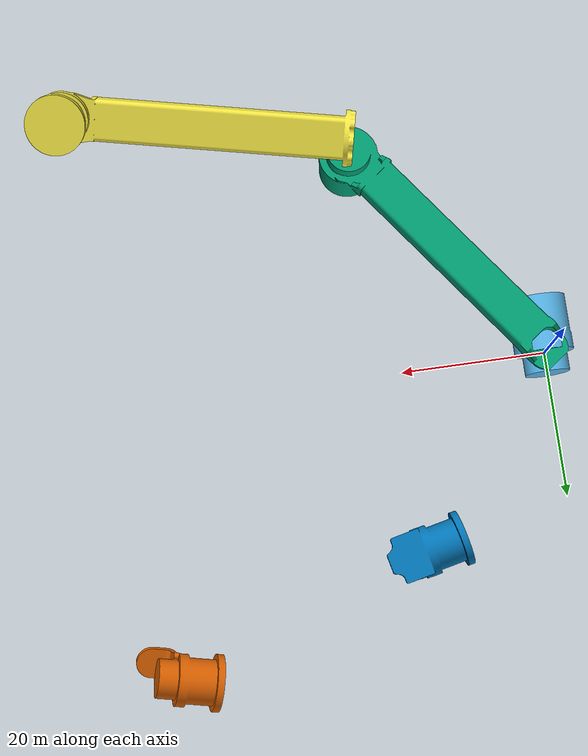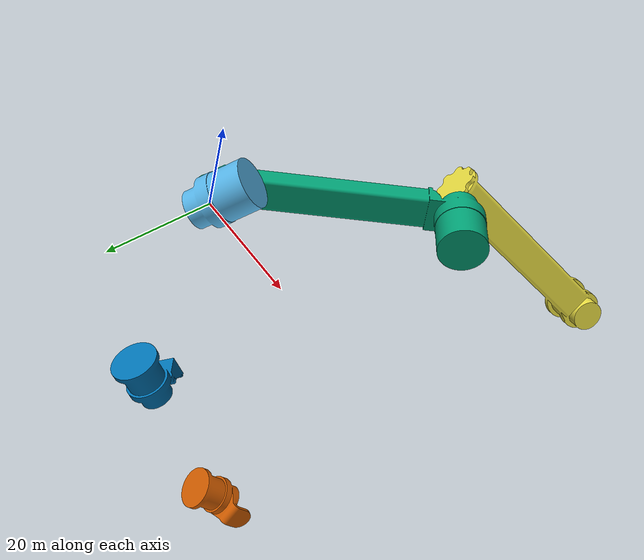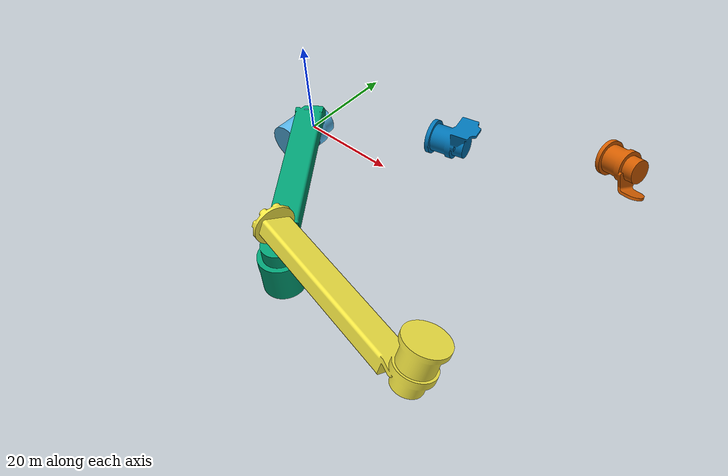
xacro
<?xml version="1.0"?>
<robot xmlns:xacro="http://www.ros.org/wiki/xacro" name="Arm">
    <xacro:arg name="initial_positions_file" default="initial_positions.yaml" />

    <!-- Import Arm urdf file -->
    <xacro:include filename="$(find cmr_arm_sim)/urdf/arm_2024.urdf" />

    <!-- Import control_xacro -->
    <xacro:include filename="Arm.ros2_control.xacro" />

    <xacro:Arm_ros2_control name="FakeSystem" initial_positions_file="$(arg initial_positions_file)"/>

</robot>

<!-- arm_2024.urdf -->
<robot name="Arm">

<link name="base_link">
  <inertial>
    <origin xyz="0 0 0" rpy="1.57079632679 0 0"/>
    <mass value="0.2689091995006286"/>
    <inertia ixx="0.0002408366428192344" iyy="0.0001965672947454995" izz="0.0002424930780899016" ixy="-7.00575013293154e-16" iyz="7.933863408177614e-06" ixz="-6.01067807617016e-17"/>
  </inertial>
  <visual>
    <origin xyz="0 0 0" rpy="1.57079632679 0 0"/>
    <geometry>
      <mesh filename="package://cmr_arm_sim/meshes/base_link.stl" scale="0.1 0.1 0.1"/>
    </geometry>
  </visual>
  <collision>
    <origin xyz="0 0 0" rpy="1.57079632679 0 0"/>
    <geometry>
      <mesh filename="package://cmr_arm_sim/meshes/base_link.stl" scale="0.1 0.1 0.1"/>
    </geometry>
  </collision>
</link>

<link name="shoulder">
  <inertial>
    <origin xyz="0 -0.044 -3.078" rpy="-1.57079632679 0 0"/>
    <mass value="0.4313488821929788"/>
    <inertia ixx="0.0003124994298400346" iyy="0.0005106434645971917" izz="0.0005464028450648415" ixy="-2.483982786710172e-05" iyz="-4.971764224987835e-06" ixz="5.171870177614032e-06"/>
  </inertial>
  <visual>
    <origin xyz="0 -0.044 .342" rpy="-1.57079632679 0 0"/>
    <geometry>
      <mesh filename="package://cmr_arm_sim/meshes/shoulder.stl" scale="0.1 0.1 0.1"/>
    </geometry>
  </visual>
  <collision>
    <origin xyz="0 -0.044 .342" rpy="-1.57079632679 0 0"/>
    <geometry>
      <mesh filename="package://cmr_arm_sim/meshes/shoulder.stl" scale="0.1 0.1 0.1"/>
    </geometry>
  </collision>
</link>

<link name="lower_arm">
  <inertial>
    <origin xyz="0 0 0" rpy="0 0 0"/>
    <mass value="0.6171685502216904"/>
    <inertia ixx="0.0063731112041358895" iyy="0.0002193424289573356" izz="0.006262212418448342" ixy="2.9581372074094503e-15" iyz="7.108667432481271e-18" ixz="2.3372990857653054e-19"/>
  </inertial>
  <visual>
    <origin xyz="0 0 0" rpy="0 0 0"/>
    <geometry>
      <mesh filename="package://cmr_arm_sim/meshes/lower_arm.stl" scale="0.1 0.1 0.1"/>
    </geometry>
  </visual>
  <collision>
    <origin xyz="0 0 0" rpy="0 0 0"/>
    <geometry>
      <mesh filename="package://cmr_arm_sim/meshes/lower_arm.stl" scale="0.1 0.1 0.1"/>
    </geometry>
  </collision>
</link>

<link name="upper_arm">
  <inertial>
    <origin xyz="0 -1.4425 0" rpy="0 0 0"/>
    <mass value="1.0473806295634103"/>
    <inertia ixx="0.01731119919222368" iyy="0.0008396658760116199" izz="0.01753140472050435" ixy="0.0011267961891559507" iyz="1.7658594867117153e-05" ixz="-7.452645136013033e-06"/>
  </inertial>
  <visual>
    <origin xyz="0 1.4425 0" rpy="0 0 0"/>
    <geometry>
      <mesh filename="package://cmr_arm_sim/meshes/upper_arm.stl" scale="0.1 0.1 0.1"/>
    </geometry>
  </visual>
  <collision>
    <origin xyz="0 1.4425 0" rpy="0 0 0"/>
    <geometry>
      <mesh filename="package://cmr_arm_sim/meshes/upper_arm.stl" scale="0.1 0.1 0.1"/>
    </geometry>
  </collision>
</link>

<link name="wrist_rotate">
  <inertial>
    <origin xyz="0 0 0" rpy="0 0 0"/>
    <mass value="0.2260913074125969"/>
    <inertia ixx="0.00021278553590153848" iyy="0.00013932651115324126" izz="0.00018035542785257985" ixy="2.097343119030967e-06" iyz="-5.926051072718819e-06" ixz="6.671150022647325e-07"/>
  </inertial>
  <visual>
    <origin xyz="-.112 -2.885 0" rpy="3.14159265358979323846264338327 0 0"/>
    <geometry>
      <mesh filename="package://cmr_arm_sim/meshes/wrist_rotate.stl" scale="0.1 0.1 0.1"/>
    </geometry>
  </visual>
  <collision>
    <origin xyz="-.112 -2.885 0" rpy="3.14159265358979323846264338327 0 0"/>
    <geometry>
      <mesh filename="package://cmr_arm_sim/meshes/wrist_rotate.stl" scale="0.1 0.1 0.1"/>
    </geometry>
  </collision>
</link>

<link name="wrist_twist_rotate">
  <inertial>
    <origin xyz="0 0 0" rpy="0 0 0"/>
    <mass value="0.4389803651612308"/>
    <inertia ixx="0.00040070141851661356" iyy="0.001209612370818616" izz="0.001204139896083145" ixy="0.00013623958530035226" iyz="-2.0352344504863396e-05" ixz="0.0001534404246037917"/>
  </inertial>
  <visual>
    <origin xyz="-.115 -2.68 -0.00508" rpy="3.14159265358979323846264338327 0 0"/>
    <geometry>
      <mesh filename="package://cmr_arm_sim/meshes/wrist_twist_rotate.stl" scale="0.1 0.1 0.1"/>
    </geometry>
  </visual>
  <collision>
    <origin xyz="-.115 -2.68 -0.00508" rpy="3.14159265358979323846264338327 0 0"/>
    <geometry>
      <mesh filename="package://cmr_arm_sim/meshes/wrist_twist_rotate.stl" scale="0.1 0.1 0.1"/>
    </geometry>
  </collision>
</link>

<link name="end_effector">
  <inertial>
    <origin xyz="0 0 0" rpy="0 0 0"/>
    <mass value="0.4985786647054013"/>
    <inertia ixx="0.0007315326979296377" iyy="0.0014043612271926742" izz="0.0010429988376861876" ixy="9.658048714039635e-05" iyz="-0.0001831704203076462" ixz="3.722825937527846e-05"/>
  </inertial>
  <visual>
    <origin xyz="-.195 -.38 .15" rpy="-1.57079632679 0 1.57079632679"/>
    <geometry>
      <mesh filename="package://cmr_arm_sim/meshes/end_effector.stl" scale=".0039 .0039 .0039"/>
    </geometry>
  </visual>
  <collision>
    <origin xyz="-.195 -.38 .15 " rpy="-1.57079632679 0 1.57079632679"/>
    <geometry>
      <mesh filename="package://cmr_arm_sim/meshes/end_effector.stl" scale=".0039 .0039 .0039"/>
    </geometry>
  </collision>
</link>

<joint name="base_joint" type="continuous">
  <origin xyz="0.0 0.04335 0.0" rpy="0 0 0"/>
  <parent link="base_link"/>
  <child link="shoulder"/>
  <axis xyz="0.0 0.0 1.0"/>
</joint>
<transmission name="base_transmission">
  <type>transmission_interface/SimpleTransmission</type>
  <joint name="base_joint"> <!-- This should match the joint name -->
    <hardwareInterface>PositionJointInterface</hardwareInterface>
  </joint>
  <actuator name="base_actuator">
    <hardwareInterface>PositionJointInterface</hardwareInterface>
    <mechanicalReduction>1</mechanicalReduction>
  </actuator>
</transmission>

<joint name="shoulder_joint" type="continuous">
  <origin xyz="0 -0.044 .361" rpy="0 0 0"/>
  <parent link="shoulder"/>
  <child link="lower_arm"/>
  <axis xyz="1 0 0"/>
</joint>
<transmission name="shoulder_transmission">
  <type>transmission_interface/SimpleTransmission</type>
  <joint name="shoulder_joint_revolute">
    <hardwareInterface>PositionJointInterface</hardwareInterface>
  </joint>
  <actuator name="shoulder_actuator">
    <hardwareInterface>PositionJointInterface</hardwareInterface>
    <mechanicalReduction>1</mechanicalReduction>
  </actuator>
</transmission>

<joint name="elbow_joint" type="continuous">
  <origin xyz="0 -1.4425 0" rpy="0 0 0"/>
  <parent link="lower_arm"/>
  <child link="upper_arm"/>
  <axis xyz="1 0 0"/>
</joint>
<transmission name="elbow_transmission">
  <type>transmission_interface/SimpleTransmission</type>
  <joint name="elbow_joint_revolute">
    <hardwareInterface>PositionJointInterface</hardwareInterface>
  </joint>
  <actuator name="elbow_actuator">
    <hardwareInterface>PositionJointInterface</hardwareInterface>
    <mechanicalReduction>1</mechanicalReduction>
  </actuator>
</transmission>

<joint name="wrist_rotate" type="continuous">
  <origin xyz=".112 -1.4425 0" rpy="0 0 0"/>
  <parent link="upper_arm"/>
  <child link="wrist_rotate"/>
  <axis xyz="0 1 0"/>
</joint>
<transmission name="wrist_rotate_transmission">
  <type>transmission_interface/SimpleTransmission</type>
  <joint name="wrist_rotate_revolute">
    <hardwareInterface>PositionJointInterface</hardwareInterface>
  </joint>
  <actuator name="wrist_rotate_actuator">
    <hardwareInterface>PositionJointInterface</hardwareInterface>
    <mechanicalReduction>1</mechanicalReduction>
  </actuator>
</transmission>

<joint name="wrist_twist" type="continuous">
  <origin xyz="0.0 -.2 0.00508" rpy="0 0 0"/>
  <parent link="wrist_rotate"/>
  <child link="wrist_twist_rotate"/>
  <axis xyz="0 0 1"/>
</joint>
<transmission name="wrist_twist_transmission">
  <type>transmission_interface/SimpleTransmission</type>
  <joint name="wrist_twist_revolute">
    <hardwareInterface>PositionJointInterface</hardwareInterface>
  </joint>
  <actuator name="wrist_twist_actuator">
    <hardwareInterface>PositionJointInterface</hardwareInterface>
    <mechanicalReduction>1</mechanicalReduction>
  </actuator>
</transmission>

<joint name="wrist_rotate_two" type="continuous">
  <origin xyz="-.385 0 -.42" rpy="0 0 0"/>
  <parent link="wrist_twist_rotate"/>
  <child link="end_effector"/>
  <axis xyz="0 1 0"/>
</joint>
<transmission name="wrist_rotate_two_transmission">
  <type>transmission_interface/SimpleTransmission</type>
  <joint name="wrist_rotate_two_actuator">
    <hardwareInterface>PositionJointInterface</hardwareInterface>
  </joint>
  <actuator name="wrist_rotate_two_actuator">
    <hardwareInterface>PositionJointInterface</hardwareInterface>
    <mechanicalReduction>1</mechanicalReduction>
  </actuator>
</transmission>

</robot>
